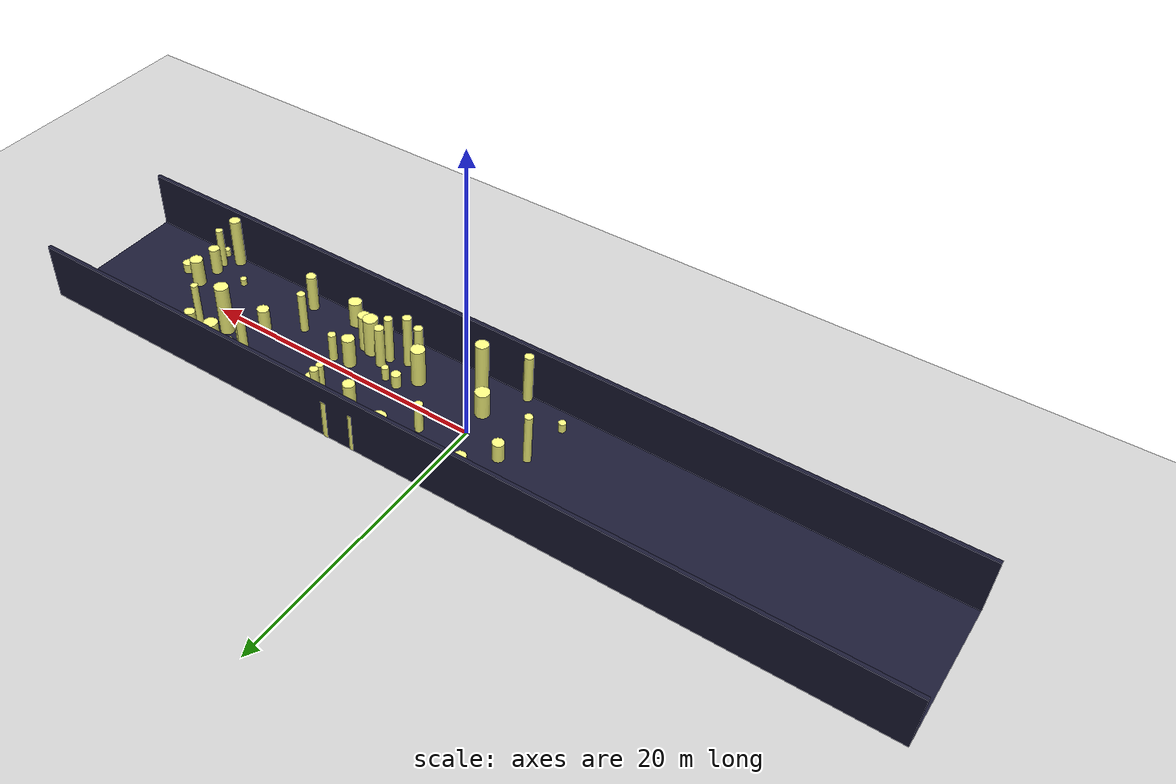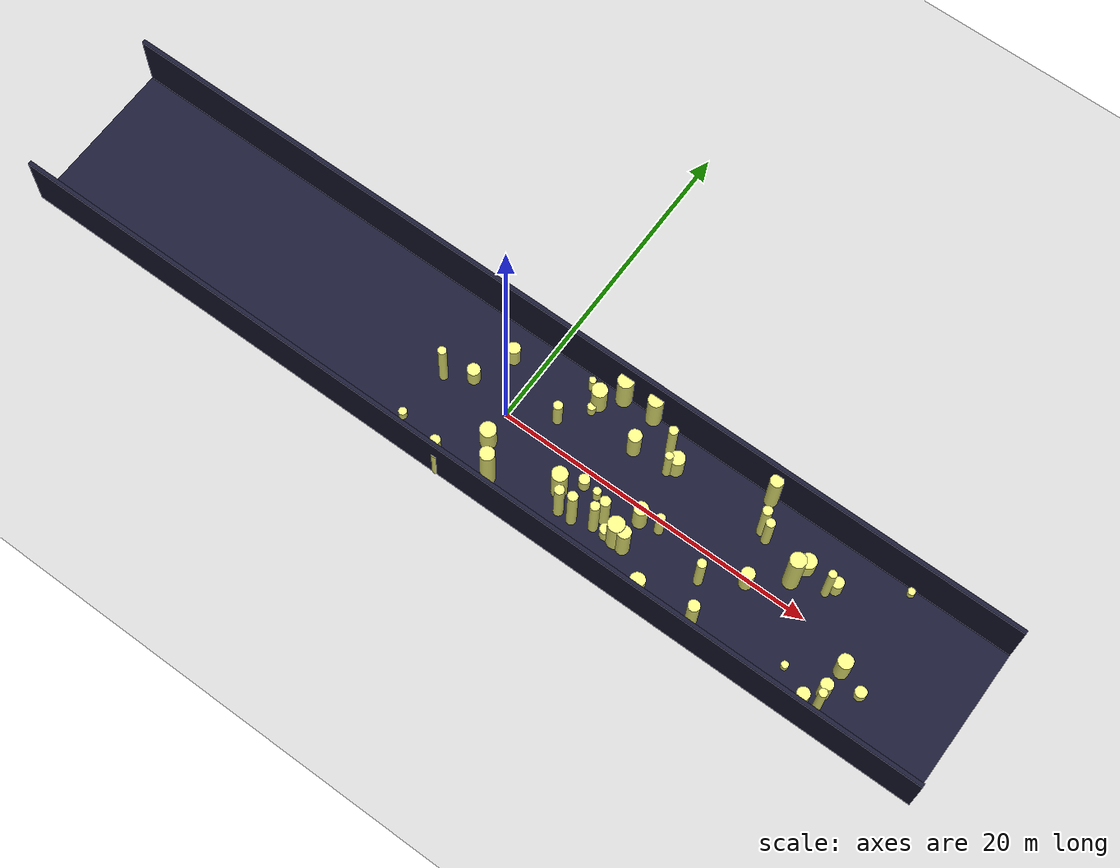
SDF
<sdf version="1.4">
 <world name="default">
  <include><uri>model://ground_plane</uri></include>
  <include><uri>model://sun</uri></include>
  <model name="forest">
   <static>true</static>
   <link name="cylinder0">
    <pose>2.5122116245704937 1.4554267723790062 1.0910465891214187 0 0 0</pose>
    <visual name="visual">
     <geometry>
      <cylinder><radius>0.27874719487534594</radius><length>2.1820931782428374</length></cylinder>
     </geometry>
     <material>
      <ambient>0.6 0.6 0.6 1</ambient>
      <diffuse>1 1 0.5 1</diffuse>
      <specular>0 0 0</specular>
      <emissive>0 0 0 1</emissive>
     </material>
    </visual>
    <collision name="collision">
     <geometry>
      <cylinder><radius>0.27874719487534594</radius><length>2.1820931782428374</length></cylinder>
     </geometry>
     <max_contacts>0</max_contacts>
    </collision>
   </link>
   <link name="cylinder1">
    <pose>5.740298809791739 -2.902266478359432 1.7204444216782937 0 0 0</pose>
    <visual name="visual">
     <geometry>
      <cylinder><radius>0.29396890148288424</radius><length>3.4408888433565874</length></cylinder>
     </geometry>
     <material>
      <ambient>0.6 0.6 0.6 1</ambient>
      <diffuse>1 1 0.5 1</diffuse>
      <specular>0 0 0</specular>
      <emissive>0 0 0 1</emissive>
     </material>
    </visual>
    <collision name="collision">
     <geometry>
      <cylinder><radius>0.29396890148288424</radius><length>3.4408888433565874</length></cylinder>
     </geometry>
     <max_contacts>0</max_contacts>
    </collision>
   </link>
   <link name="cylinder3">
    <pose>15.13735271422376 -3.709229131795847 1.3510711276143499 0 0 0</pose>
    <visual name="visual">
     <geometry>
      <cylinder><radius>0.349847727589051</radius><length>2.7021422552286998</length></cylinder>
     </geometry>
     <material>
      <ambient>0.6 0.6 0.6 1</ambient>
      <diffuse>1 1 0.5 1</diffuse>
      <specular>0 0 0</specular>
      <emissive>0 0 0 1</emissive>
     </material>
    </visual>
    <collision name="collision">
     <geometry>
      <cylinder><radius>0.349847727589051</radius><length>2.7021422552286998</length></cylinder>
     </geometry>
     <max_contacts>0</max_contacts>
    </collision>
   </link>
   <link name="cylinder4">
    <pose>-4.204448856607289 -0.20657908036231465 1.8052613234034955 0 0 0</pose>
    <visual name="visual">
     <geometry>
      <cylinder><radius>0.25317556942553027</radius><length>3.610522646806991</length></cylinder>
     </geometry>
     <material>
      <ambient>0.6 0.6 0.6 1</ambient>
      <diffuse>1 1 0.5 1</diffuse>
      <specular>0 0 0</specular>
      <emissive>0 0 0 1</emissive>
     </material>
    </visual>
    <collision name="collision">
     <geometry>
      <cylinder><radius>0.25317556942553027</radius><length>3.610522646806991</length></cylinder>
     </geometry>
     <max_contacts>0</max_contacts>
    </collision>
   </link>
   <link name="cylinder5">
    <pose>9.207790323810706 2.5153890918507305 1.2973155294064729 0 0 0</pose>
    <visual name="visual">
     <geometry>
      <cylinder><radius>0.23956785812684658</radius><length>2.5946310588129458</length></cylinder>
     </geometry>
     <material>
      <ambient>0.6 0.6 0.6 1</ambient>
      <diffuse>1 1 0.5 1</diffuse>
      <specular>0 0 0</specular>
      <emissive>0 0 0 1</emissive>
     </material>
    </visual>
    <collision name="collision">
     <geometry>
      <cylinder><radius>0.23956785812684658</radius><length>2.5946310588129458</length></cylinder>
     </geometry>
     <max_contacts>0</max_contacts>
    </collision>
   </link>
   <link name="cylinder14">
    <pose>0.18886776030713648 -1.8842476643459873 0.927220741482393 0 0 0</pose>
    <visual name="visual">
     <geometry>
      <cylinder><radius>0.48721368704605916</radius><length>1.854441482964786</length></cylinder>
     </geometry>
     <material>
      <ambient>0.6 0.6 0.6 1</ambient>
      <diffuse>1 1 0.5 1</diffuse>
      <specular>0 0 0</specular>
      <emissive>0 0 0 1</emissive>
     </material>
    </visual>
    <collision name="collision">
     <geometry>
      <cylinder><radius>0.48721368704605916</radius><length>1.854441482964786</length></cylinder>
     </geometry>
     <max_contacts>0</max_contacts>
    </collision>
   </link>
   <link name="cylinder15">
    <pose>5.080948650887056 -1.9283753831646635 1.3785712172339197 0 0 0</pose>
    <visual name="visual">
     <geometry>
      <cylinder><radius>0.47102143880978553</radius><length>2.7571424344678395</length></cylinder>
     </geometry>
     <material>
      <ambient>0.6 0.6 0.6 1</ambient>
      <diffuse>1 1 0.5 1</diffuse>
      <specular>0 0 0</specular>
      <emissive>0 0 0 1</emissive>
     </material>
    </visual>
    <collision name="collision">
     <geometry>
      <cylinder><radius>0.47102143880978553</radius><length>2.7571424344678395</length></cylinder>
     </geometry>
     <max_contacts>0</max_contacts>
    </collision>
   </link>
   <link name="cylinder16">
    <pose>6.61182804432131 -2.898672489483226 1.9259601925053633 0 0 0</pose>
    <visual name="visual">
     <geometry>
      <cylinder><radius>0.29760178141295346</radius><length>3.8519203850107266</length></cylinder>
     </geometry>
     <material>
      <ambient>0.6 0.6 0.6 1</ambient>
      <diffuse>1 1 0.5 1</diffuse>
      <specular>0 0 0</specular>
      <emissive>0 0 0 1</emissive>
     </material>
    </visual>
    <collision name="collision">
     <geometry>
      <cylinder><radius>0.29760178141295346</radius><length>3.8519203850107266</length></cylinder>
     </geometry>
     <max_contacts>0</max_contacts>
    </collision>
   </link>
   <link name="cylinder21">
    <pose>14.794978983714138 4.5721895103297125 1.5877301425671195 0 0 0</pose>
    <visual name="visual">
     <geometry>
      <cylinder><radius>0.39303448608732106</radius><length>3.175460285134239</length></cylinder>
     </geometry>
     <material>
      <ambient>0.6 0.6 0.6 1</ambient>
      <diffuse>1 1 0.5 1</diffuse>
      <specular>0 0 0</specular>
      <emissive>0 0 0 1</emissive>
     </material>
    </visual>
    <collision name="collision">
     <geometry>
      <cylinder><radius>0.39303448608732106</radius><length>3.175460285134239</length></cylinder>
     </geometry>
     <max_contacts>0</max_contacts>
    </collision>
   </link>
   <link name="cylinder22">
    <pose>1.4580143266485805 -3.6402796680702654 1.8861537415355962 0 0 0</pose>
    <visual name="visual">
     <geometry>
      <cylinder><radius>0.43752073358639076</radius><length>3.7723074830711925</length></cylinder>
     </geometry>
     <material>
      <ambient>0.6 0.6 0.6 1</ambient>
      <diffuse>1 1 0.5 1</diffuse>
      <specular>0 0 0</specular>
      <emissive>0 0 0 1</emissive>
     </material>
    </visual>
    <collision name="collision">
     <geometry>
      <cylinder><radius>0.43752073358639076</radius><length>3.7723074830711925</length></cylinder>
     </geometry>
     <max_contacts>0</max_contacts>
    </collision>
   </link>
   <link name="cylinder24">
    <pose>2.953514451823768 4.171516001826896 0.6280694018056326 0 0 0</pose>
    <visual name="visual">
     <geometry>
      <cylinder><radius>0.21291179388986262</radius><length>1.2561388036112653</length></cylinder>
     </geometry>
     <material>
      <ambient>0.6 0.6 0.6 1</ambient>
      <diffuse>1 1 0.5 1</diffuse>
      <specular>0 0 0</specular>
      <emissive>0 0 0 1</emissive>
     </material>
    </visual>
    <collision name="collision">
     <geometry>
      <cylinder><radius>0.21291179388986262</radius><length>1.2561388036112653</length></cylinder>
     </geometry>
     <max_contacts>0</max_contacts>
    </collision>
   </link>
   <link name="cylinder27">
    <pose>16.339308908062087 -0.2025547932904317 0.8571047263075176 0 0 0</pose>
    <visual name="visual">
     <geometry>
      <cylinder><radius>0.39997915163697584</radius><length>1.714209452615035</length></cylinder>
     </geometry>
     <material>
      <ambient>0.6 0.6 0.6 1</ambient>
      <diffuse>1 1 0.5 1</diffuse>
      <specular>0 0 0</specular>
      <emissive>0 0 0 1</emissive>
     </material>
    </visual>
    <collision name="collision">
     <geometry>
      <cylinder><radius>0.39997915163697584</radius><length>1.714209452615035</length></cylinder>
     </geometry>
     <max_contacts>0</max_contacts>
    </collision>
   </link>
   <link name="cylinder33">
    <pose>18.23974290360573 1.339459283368205 1.8441640490602003 0 0 0</pose>
    <visual name="visual">
     <geometry>
      <cylinder><radius>0.47264410393034395</radius><length>3.6883280981204005</length></cylinder>
     </geometry>
     <material>
      <ambient>0.6 0.6 0.6 1</ambient>
      <diffuse>1 1 0.5 1</diffuse>
      <specular>0 0 0</specular>
      <emissive>0 0 0 1</emissive>
     </material>
    </visual>
    <collision name="collision">
     <geometry>
      <cylinder><radius>0.47264410393034395</radius><length>3.6883280981204005</length></cylinder>
     </geometry>
     <max_contacts>0</max_contacts>
    </collision>
   </link>
   <link name="cylinder34">
    <pose>23.095826558992556 -2.8613568608352025 0.9951352167996178 0 0 0</pose>
    <visual name="visual">
     <geometry>
      <cylinder><radius>0.3710210629821359</radius><length>1.9902704335992356</length></cylinder>
     </geometry>
     <material>
      <ambient>0.6 0.6 0.6 1</ambient>
      <diffuse>1 1 0.5 1</diffuse>
      <specular>0 0 0</specular>
      <emissive>0 0 0 1</emissive>
     </material>
    </visual>
    <collision name="collision">
     <geometry>
      <cylinder><radius>0.3710210629821359</radius><length>1.9902704335992356</length></cylinder>
     </geometry>
     <max_contacts>0</max_contacts>
    </collision>
   </link>
   <link name="cylinder35">
    <pose>24.714990797352712 -1.765484414521131 0.38211233775964437 0 0 0</pose>
    <visual name="visual">
     <geometry>
      <cylinder><radius>0.3425147693579313</radius><length>0.7642246755192887</length></cylinder>
     </geometry>
     <material>
      <ambient>0.6 0.6 0.6 1</ambient>
      <diffuse>1 1 0.5 1</diffuse>
      <specular>0 0 0</specular>
      <emissive>0 0 0 1</emissive>
     </material>
    </visual>
    <collision name="collision">
     <geometry>
      <cylinder><radius>0.3425147693579313</radius><length>0.7642246755192887</length></cylinder>
     </geometry>
     <max_contacts>0</max_contacts>
    </collision>
   </link>
   <link name="cylinder36">
    <pose>23.224490616280995 -3.663025094059953 1.477940125006662 0 0 0</pose>
    <visual name="visual">
     <geometry>
      <cylinder><radius>0.24628033705042934</radius><length>2.955880250013324</length></cylinder>
     </geometry>
     <material>
      <ambient>0.6 0.6 0.6 1</ambient>
      <diffuse>1 1 0.5 1</diffuse>
      <specular>0 0 0</specular>
      <emissive>0 0 0 1</emissive>
     </material>
    </visual>
    <collision name="collision">
     <geometry>
      <cylinder><radius>0.24628033705042934</radius><length>2.955880250013324</length></cylinder>
     </geometry>
     <max_contacts>0</max_contacts>
    </collision>
   </link>
   <link name="cylinder37">
    <pose>8.032982198013158 -1.8444594471032048 1.5328081589239524 0 0 0</pose>
    <visual name="visual">
     <geometry>
      <cylinder><radius>0.31196018191229113</radius><length>3.065616317847905</length></cylinder>
     </geometry>
     <material>
      <ambient>0.6 0.6 0.6 1</ambient>
      <diffuse>1 1 0.5 1</diffuse>
      <specular>0 0 0</specular>
      <emissive>0 0 0 1</emissive>
     </material>
    </visual>
    <collision name="collision">
     <geometry>
      <cylinder><radius>0.31196018191229113</radius><length>3.065616317847905</length></cylinder>
     </geometry>
     <max_contacts>0</max_contacts>
    </collision>
   </link>
   <link name="cylinder42">
    <pose>4.786974622643086 4.668397056595717 1.3857671620983145 0 0 0</pose>
    <visual name="visual">
     <geometry>
      <cylinder><radius>0.47808542402327797</radius><length>2.771534324196629</length></cylinder>
     </geometry>
     <material>
      <ambient>0.6 0.6 0.6 1</ambient>
      <diffuse>1 1 0.5 1</diffuse>
      <specular>0 0 0</specular>
      <emissive>0 0 0 1</emissive>
     </material>
    </visual>
    <collision name="collision">
     <geometry>
      <cylinder><radius>0.47808542402327797</radius><length>2.771534324196629</length></cylinder>
     </geometry>
     <max_contacts>0</max_contacts>
    </collision>
   </link>
   <link name="cylinder44">
    <pose>6.970719649108322 2.507995609290621 1.1072151191163275 0 0 0</pose>
    <visual name="visual">
     <geometry>
      <cylinder><radius>0.40269769239476133</radius><length>2.214430238232655</length></cylinder>
     </geometry>
     <material>
      <ambient>0.6 0.6 0.6 1</ambient>
      <diffuse>1 1 0.5 1</diffuse>
      <specular>0 0 0</specular>
      <emissive>0 0 0 1</emissive>
     </material>
    </visual>
    <collision name="collision">
     <geometry>
      <cylinder><radius>0.40269769239476133</radius><length>2.214430238232655</length></cylinder>
     </geometry>
     <max_contacts>0</max_contacts>
    </collision>
   </link>
   <link name="cylinder45">
    <pose>15.831610690590296 2.4912157370991554 1.4367248032020083 0 0 0</pose>
    <visual name="visual">
     <geometry>
      <cylinder><radius>0.26768839269387523</radius><length>2.8734496064040167</length></cylinder>
     </geometry>
     <material>
      <ambient>0.6 0.6 0.6 1</ambient>
      <diffuse>1 1 0.5 1</diffuse>
      <specular>0 0 0</specular>
      <emissive>0 0 0 1</emissive>
     </material>
    </visual>
    <collision name="collision">
     <geometry>
      <cylinder><radius>0.26768839269387523</radius><length>2.8734496064040167</length></cylinder>
     </geometry>
     <max_contacts>0</max_contacts>
    </collision>
   </link>
   <link name="cylinder48">
    <pose>7.819350977288607 -2.5271675822177464 1.7340828750675485 0 0 0</pose>
    <visual name="visual">
     <geometry>
      <cylinder><radius>0.2831108168849127</radius><length>3.468165750135097</length></cylinder>
     </geometry>
     <material>
      <ambient>0.6 0.6 0.6 1</ambient>
      <diffuse>1 1 0.5 1</diffuse>
      <specular>0 0 0</specular>
      <emissive>0 0 0 1</emissive>
     </material>
    </visual>
    <collision name="collision">
     <geometry>
      <cylinder><radius>0.2831108168849127</radius><length>3.468165750135097</length></cylinder>
     </geometry>
     <max_contacts>0</max_contacts>
    </collision>
   </link>
   <link name="cylinder49">
    <pose>22.448143988832122 -4.504987331807815 1.8040991506452526 0 0 0</pose>
    <visual name="visual">
     <geometry>
      <cylinder><radius>0.3788110216736742</radius><length>3.6081983012905052</length></cylinder>
     </geometry>
     <material>
      <ambient>0.6 0.6 0.6 1</ambient>
      <diffuse>1 1 0.5 1</diffuse>
      <specular>0 0 0</specular>
      <emissive>0 0 0 1</emissive>
     </material>
    </visual>
    <collision name="collision">
     <geometry>
      <cylinder><radius>0.3788110216736742</radius><length>3.6081983012905052</length></cylinder>
     </geometry>
     <max_contacts>0</max_contacts>
    </collision>
   </link>
   <link name="cylinder50">
    <pose>9.221202019788997 -2.4680737388358143 1.407225930817046 0 0 0</pose>
    <visual name="visual">
     <geometry>
      <cylinder><radius>0.49617912433899053</radius><length>2.814451861634092</length></cylinder>
     </geometry>
     <material>
      <ambient>0.6 0.6 0.6 1</ambient>
      <diffuse>1 1 0.5 1</diffuse>
      <specular>0 0 0</specular>
      <emissive>0 0 0 1</emissive>
     </material>
    </visual>
    <collision name="collision">
     <geometry>
      <cylinder><radius>0.49617912433899053</radius><length>2.814451861634092</length></cylinder>
     </geometry>
     <max_contacts>0</max_contacts>
    </collision>
   </link>
   <link name="cylinder51">
    <pose>23.20490847644362 -1.2479280300506157 1.0096954887568317 0 0 0</pose>
    <visual name="visual">
     <geometry>
      <cylinder><radius>0.4433873506201335</radius><length>2.0193909775136634</length></cylinder>
     </geometry>
     <material>
      <ambient>0.6 0.6 0.6 1</ambient>
      <diffuse>1 1 0.5 1</diffuse>
      <specular>0 0 0</specular>
      <emissive>0 0 0 1</emissive>
     </material>
    </visual>
    <collision name="collision">
     <geometry>
      <cylinder><radius>0.4433873506201335</radius><length>2.0193909775136634</length></cylinder>
     </geometry>
     <max_contacts>0</max_contacts>
    </collision>
   </link>
   <link name="cylinder53">
    <pose>20.10760565190381 1.9123318650157275 1.6537855213037769 0 0 0</pose>
    <visual name="visual">
     <geometry>
      <cylinder><radius>0.2386102407152301</radius><length>3.3075710426075537</length></cylinder>
     </geometry>
     <material>
      <ambient>0.6 0.6 0.6 1</ambient>
      <diffuse>1 1 0.5 1</diffuse>
      <specular>0 0 0</specular>
      <emissive>0 0 0 1</emissive>
     </material>
    </visual>
    <collision name="collision">
     <geometry>
      <cylinder><radius>0.2386102407152301</radius><length>3.3075710426075537</length></cylinder>
     </geometry>
     <max_contacts>0</max_contacts>
    </collision>
   </link>
   <link name="cylinder57">
    <pose>9.809432336711879 -2.5612738248359515 1.3699632924031055 0 0 0</pose>
    <visual name="visual">
     <geometry>
      <cylinder><radius>0.40042244446624675</radius><length>2.739926584806211</length></cylinder>
     </geometry>
     <material>
      <ambient>0.6 0.6 0.6 1</ambient>
      <diffuse>1 1 0.5 1</diffuse>
      <specular>0 0 0</specular>
      <emissive>0 0 0 1</emissive>
     </material>
    </visual>
    <collision name="collision">
     <geometry>
      <cylinder><radius>0.40042244446624675</radius><length>2.739926584806211</length></cylinder>
     </geometry>
     <max_contacts>0</max_contacts>
    </collision>
   </link>
   <link name="cylinder62">
    <pose>-1.1202543328110366 -4.891617807019855 1.2433011680831552 0 0 0</pose>
    <visual name="visual">
     <geometry>
      <cylinder><radius>0.2914426185208163</radius><length>2.4866023361663103</length></cylinder>
     </geometry>
     <material>
      <ambient>0.6 0.6 0.6 1</ambient>
      <diffuse>1 1 0.5 1</diffuse>
      <specular>0 0 0</specular>
      <emissive>0 0 0 1</emissive>
     </material>
    </visual>
    <collision name="collision">
     <geometry>
      <cylinder><radius>0.2914426185208163</radius><length>2.4866023361663103</length></cylinder>
     </geometry>
     <max_contacts>0</max_contacts>
    </collision>
   </link>
   <link name="cylinder63">
    <pose>3.8190027920107568 3.579123430146577 1.074971093633638 0 0 0</pose>
    <visual name="visual">
     <geometry>
      <cylinder><radius>0.4647251919647949</radius><length>2.149942187267276</length></cylinder>
     </geometry>
     <material>
      <ambient>0.6 0.6 0.6 1</ambient>
      <diffuse>1 1 0.5 1</diffuse>
      <specular>0 0 0</specular>
      <emissive>0 0 0 1</emissive>
     </material>
    </visual>
    <collision name="collision">
     <geometry>
      <cylinder><radius>0.4647251919647949</radius><length>2.149942187267276</length></cylinder>
     </geometry>
     <max_contacts>0</max_contacts>
    </collision>
   </link>
   <link name="cylinder64">
    <pose>-1.3353628650063172 -4.603153292782719 1.7711445876848795 0 0 0</pose>
    <visual name="visual">
     <geometry>
      <cylinder><radius>0.30010122480529033</radius><length>3.542289175369759</length></cylinder>
     </geometry>
     <material>
      <ambient>0.6 0.6 0.6 1</ambient>
      <diffuse>1 1 0.5 1</diffuse>
      <specular>0 0 0</specular>
      <emissive>0 0 0 1</emissive>
     </material>
    </visual>
    <collision name="collision">
     <geometry>
      <cylinder><radius>0.30010122480529033</radius><length>3.542289175369759</length></cylinder>
     </geometry>
     <max_contacts>0</max_contacts>
    </collision>
   </link>
   <link name="cylinder65">
    <pose>-1.6459123704790137 2.9986343947005736 0.799410165478372 0 0 0</pose>
    <visual name="visual">
     <geometry><cylinder><radius>0.379796284494472</radius><length>1.598820330956744</length></cylinder></geometry>
     <material>
      <ambient>0.6 0.6 0.6 1</ambient>
      <diffuse>1 1 0.5 1</diffuse>
      <specular>0 0 0</specular>
      <emissive>0 0 0 1</emissive>
     </material>
    </visual>
    <collision name="collision">
     <geometry><cylinder><radius>0.379796284494472</radius><length>1.598820330956744</length></cylinder></geometry>
     <max_contacts>0</max_contacts>
    </collision>
   </link>
   <link name="cylinder67">
    <pose>10.817768553214854 -0.5259603936769741 1.039585505066491 0 0 0</pose>
    <visual name="visual">
     <geometry>
      <cylinder><radius>0.26878573653986737</radius><length>2.079171010132982</length></cylinder>
     </geometry>
     <material>
      <ambient>0.6 0.6 0.6 1</ambient>
      <diffuse>1 1 0.5 1</diffuse>
      <specular>0 0 0</specular>
      <emissive>0 0 0 1</emissive>
     </material>
    </visual>
    <collision name="collision">
     <geometry>
      <cylinder><radius>0.26878573653986737</radius><length>2.079171010132982</length></cylinder>
     </geometry>
     <max_contacts>0</max_contacts>
    </collision>
   </link>
   <link name="cylinder68">
    <pose>14.183803024570182 -1.6321367324853906 1.5153235489839836 0 0 0</pose>
    <visual name="visual">
     <geometry>
      <cylinder><radius>0.27197004012225234</radius><length>3.030647097967967</length></cylinder>
     </geometry>
     <material>
      <ambient>0.6 0.6 0.6 1</ambient>
      <diffuse>1 1 0.5 1</diffuse>
      <specular>0 0 0</specular>
      <emissive>0 0 0 1</emissive>
     </material>
    </visual>
    <collision name="collision">
     <geometry>
      <cylinder><radius>0.27197004012225234</radius><length>3.030647097967967</length></cylinder>
     </geometry>
     <max_contacts>0</max_contacts>
    </collision>
   </link>
   <link name="cylinder69">
    <pose>20.631126038959664 -2.8458166371514038 0.26310570461469074 0 0 0</pose>
    <visual name="visual">
     <geometry>
      <cylinder><radius>0.2144225091931356</radius><length>0.5262114092293815</length></cylinder>
     </geometry>
     <material>
      <ambient>0.6 0.6 0.6 1</ambient>
      <diffuse>1 1 0.5 1</diffuse>
      <specular>0 0 0</specular>
      <emissive>0 0 0 1</emissive>
     </material>
    </visual>
    <collision name="collision">
     <geometry>
      <cylinder><radius>0.2144225091931356</radius><length>0.5262114092293815</length></cylinder>
     </geometry>
     <max_contacts>0</max_contacts>
    </collision>
   </link>
   <link name="cylinder70">
    <pose>6.780568366691398 4.710194866346539 1.3861195644565667 0 0 0</pose>
    <visual name="visual">
     <geometry>
      <cylinder><radius>0.45778567497248146</radius><length>2.7722391289131334</length></cylinder>
     </geometry>
     <material>
      <ambient>0.6 0.6 0.6 1</ambient>
      <diffuse>1 1 0.5 1</diffuse>
      <specular>0 0 0</specular>
      <emissive>0 0 0 1</emissive>
     </material>
    </visual>
    <collision name="collision">
     <geometry>
      <cylinder><radius>0.45778567497248146</radius><length>2.7722391289131334</length></cylinder>
     </geometry>
     <max_contacts>0</max_contacts>
    </collision>
   </link>
   <link name="cylinder71">
    <pose>11.799850733752919 -4.071775821878348 0.9528354393685703 0 0 0</pose>
    <visual name="visual">
     <geometry>
      <cylinder><radius>0.4452692028893376</radius><length>1.9056708787371406</length></cylinder>
     </geometry>
     <material>
      <ambient>0.6 0.6 0.6 1</ambient>
      <diffuse>1 1 0.5 1</diffuse>
      <specular>0 0 0</specular>
      <emissive>0 0 0 1</emissive>
     </material>
    </visual>
    <collision name="collision">
     <geometry>
      <cylinder><radius>0.4452692028893376</radius><length>1.9056708787371406</length></cylinder>
     </geometry>
     <max_contacts>0</max_contacts>
    </collision>
   </link>
   <link name="cylinder72">
    <pose>-2.7406588717417364 0.6845171566916566 0.6865115924767811 0 0 0</pose>
    <visual name="visual">
     <geometry>
      <cylinder><radius>0.38755160050737747</radius><length>1.3730231849535621</length></cylinder>
     </geometry>
     <material>
      <ambient>0.6 0.6 0.6 1</ambient>
      <diffuse>1 1 0.5 1</diffuse>
      <specular>0 0 0</specular>
      <emissive>0 0 0 1</emissive>
     </material>
    </visual>
    <collision name="collision">
     <geometry>
      <cylinder><radius>0.38755160050737747</radius><length>1.3730231849535621</length></cylinder>
     </geometry>
     <max_contacts>0</max_contacts>
    </collision>
   </link>
   <link name="cylinder75">
    <pose>8.678431007123088 3.598476296375514 1.664048630595085 0 0 0</pose>
    <visual name="visual">
     <geometry><cylinder><radius>0.2744410944720828</radius><length>3.32809726119017</length></cylinder></geometry>
     <material>
      <ambient>0.6 0.6 0.6 1</ambient>
      <diffuse>1 1 0.5 1</diffuse>
      <specular>0 0 0</specular>
      <emissive>0 0 0 1</emissive>
     </material>
    </visual>
    <collision name="collision">
     <geometry><cylinder><radius>0.2744410944720828</radius><length>3.32809726119017</length></cylinder></geometry>
     <max_contacts>0</max_contacts>
    </collision>
   </link>
   <link name="cylinder77">
    <pose>23.705097508130258 -4.590883656350768 0.2948411948718712 0 0 0</pose>
    <visual name="visual">
     <geometry>
      <cylinder><radius>0.21371512205565985</radius><length>0.5896823897437424</length></cylinder>
     </geometry>
     <material>
      <ambient>0.6 0.6 0.6 1</ambient>
      <diffuse>1 1 0.5 1</diffuse>
      <specular>0 0 0</specular>
      <emissive>0 0 0 1</emissive>
     </material>
    </visual>
    <collision name="collision">
     <geometry>
      <cylinder><radius>0.21371512205565985</radius><length>0.5896823897437424</length></cylinder>
     </geometry>
     <max_contacts>0</max_contacts>
    </collision>
   </link>
   <link name="cylinder80">
    <pose>8.619753119686422 -2.4921701277063035 0.5403637752500053 0 0 0</pose>
    <visual name="visual">
     <geometry>
      <cylinder><radius>0.35053714325482976</radius><length>1.0807275505000107</length></cylinder>
     </geometry>
     <material>
      <ambient>0.6 0.6 0.6 1</ambient>
      <diffuse>1 1 0.5 1</diffuse>
      <specular>0 0 0</specular>
      <emissive>0 0 0 1</emissive>
     </material>
    </visual>
    <collision name="collision">
     <geometry>
      <cylinder><radius>0.35053714325482976</radius><length>1.0807275505000107</length></cylinder>
     </geometry>
     <max_contacts>0</max_contacts>
    </collision>
   </link>
   <link name="cylinder82">
    <pose>18.51917433551246 2.454424213440598 0.6763228913129868 0 0 0</pose>
    <visual name="visual">
     <geometry>
      <cylinder><radius>0.47712174016035186</radius><length>1.3526457826259737</length></cylinder>
     </geometry>
     <material>
      <ambient>0.6 0.6 0.6 1</ambient>
      <diffuse>1 1 0.5 1</diffuse>
      <specular>0 0 0</specular>
      <emissive>0 0 0 1</emissive>
     </material>
    </visual>
    <collision name="collision">
     <geometry>
      <cylinder><radius>0.47712174016035186</radius><length>1.3526457826259737</length></cylinder>
     </geometry>
     <max_contacts>0</max_contacts>
    </collision>
   </link>
   <link name="cylinder84">
    <pose>-4.5798570464672 -3.4738543194477134 0.3518024904844381 0 0 0</pose>
    <visual name="visual">
     <geometry>
      <cylinder><radius>0.24530643076879968</radius><length>0.7036049809688762</length></cylinder>
     </geometry>
     <material>
      <ambient>0.6 0.6 0.6 1</ambient>
      <diffuse>1 1 0.5 1</diffuse>
      <specular>0 0 0</specular>
      <emissive>0 0 0 1</emissive>
     </material>
    </visual>
    <collision name="collision">
     <geometry>
      <cylinder><radius>0.24530643076879968</radius><length>0.7036049809688762</length></cylinder>
     </geometry>
     <max_contacts>0</max_contacts>
    </collision>
   </link>
   <link name="cylinder85">
    <pose>15.365208833423964 2.774482397236998 1.7165733926764974 0 0 0</pose>
    <visual name="visual">
     <geometry>
      <cylinder><radius>0.28910523704547886</radius><length>3.433146785352995</length></cylinder>
     </geometry>
     <material>
      <ambient>0.6 0.6 0.6 1</ambient>
      <diffuse>1 1 0.5 1</diffuse>
      <specular>0 0 0</specular>
      <emissive>0 0 0 1</emissive>
     </material>
    </visual>
    <collision name="collision">
     <geometry>
      <cylinder><radius>0.28910523704547886</radius><length>3.433146785352995</length></cylinder>
     </geometry>
     <max_contacts>0</max_contacts>
    </collision>
   </link>
   <link name="cylinder89">
    <pose>9.513824444506419 2.966333547423476 0.8955300479680691 0 0 0</pose>
    <visual name="visual">
     <geometry>
      <cylinder><radius>0.4536550308507975</radius><length>1.7910600959361382</length></cylinder>
     </geometry>
     <material>
      <ambient>0.6 0.6 0.6 1</ambient>
      <diffuse>1 1 0.5 1</diffuse>
      <specular>0 0 0</specular>
      <emissive>0 0 0 1</emissive>
     </material>
    </visual>
    <collision name="collision">
     <geometry>
      <cylinder><radius>0.4536550308507975</radius><length>1.7910600959361382</length></cylinder>
     </geometry>
     <max_contacts>0</max_contacts>
    </collision>
   </link>
   <link name="cylinder91">
    <pose>6.000028143043135 -0.8306237302830057 0.5208610442469925 0 0 0</pose>
    <visual name="visual">
     <geometry>
      <cylinder><radius>0.32279307336334606</radius><length>1.041722088493985</length></cylinder>
     </geometry>
     <material>
      <ambient>0.6 0.6 0.6 1</ambient>
      <diffuse>1 1 0.5 1</diffuse>
      <specular>0 0 0</specular>
      <emissive>0 0 0 1</emissive>
     </material>
    </visual>
    <collision name="collision">
     <geometry>
      <cylinder><radius>0.32279307336334606</radius><length>1.041722088493985</length></cylinder>
     </geometry>
     <max_contacts>0</max_contacts>
    </collision>
   </link>
   <link name="cylinder92">
    <pose>3.741504003365474 3.0014652557896397 0.4022537740776915 0 0 0</pose>
    <visual name="visual">
     <geometry>
      <cylinder><radius>0.2468969550510117</radius><length>0.804507548155383</length></cylinder>
     </geometry>
     <material>
      <ambient>0.6 0.6 0.6 1</ambient>
      <diffuse>1 1 0.5 1</diffuse>
      <specular>0 0 0</specular>
      <emissive>0 0 0 1</emissive>
     </material>
    </visual>
    <collision name="collision">
     <geometry>
      <cylinder><radius>0.2468969550510117</radius><length>0.804507548155383</length></cylinder>
     </geometry>
     <max_contacts>0</max_contacts>
    </collision>
   </link>
   <link name="cylinder93">
    <pose>6.95439517668553 -0.9579493131803227 0.49628118702461593 0 0 0</pose>
    <visual name="visual">
     <geometry>
      <cylinder><radius>0.2365712605994581</radius><length>0.9925623740492319</length></cylinder>
     </geometry>
     <material>
      <ambient>0.6 0.6 0.6 1</ambient>
      <diffuse>1 1 0.5 1</diffuse>
      <specular>0 0 0</specular>
      <emissive>0 0 0 1</emissive>
     </material>
    </visual>
    <collision name="collision">
     <geometry>
      <cylinder><radius>0.2365712605994581</radius><length>0.9925623740492319</length></cylinder>
     </geometry>
     <max_contacts>0</max_contacts>
    </collision>
   </link>
   <link name="cylinder95">
    <pose>9.667373041734841 -0.7408263650060949 1.090707623524531 0 0 0</pose>
    <visual name="visual">
     <geometry>
      <cylinder><radius>0.4231139685232306</radius><length>2.181415247049062</length></cylinder>
     </geometry>
     <material>
      <ambient>0.6 0.6 0.6 1</ambient>
      <diffuse>1 1 0.5 1</diffuse>
      <specular>0 0 0</specular>
      <emissive>0 0 0 1</emissive>
     </material>
    </visual>
    <collision name="collision">
     <geometry>
      <cylinder><radius>0.4231139685232306</radius><length>2.181415247049062</length></cylinder>
     </geometry>
     <max_contacts>0</max_contacts>
    </collision>
   </link>
   <link name="cylinder97">
    <pose>23.87205239858684 4.612065436752944 0.2780723999521286 0 0 0</pose>
    <visual name="visual">
     <geometry>
      <cylinder><radius>0.22250478984074754</radius><length>0.5561447999042572</length></cylinder>
     </geometry>
     <material>
      <ambient>0.6 0.6 0.6 1</ambient>
      <diffuse>1 1 0.5 1</diffuse>
      <specular>0 0 0</specular>
      <emissive>0 0 0 1</emissive>
     </material>
    </visual>
    <collision name="collision">
     <geometry>
      <cylinder><radius>0.22250478984074754</radius><length>0.5561447999042572</length></cylinder>
     </geometry>
     <max_contacts>0</max_contacts>
    </collision>
   </link>
   <link name="cylinder99">
    <pose>20.44686071065776 2.394710545574638 0.6592849924643258 0 0 0</pose>
    <visual name="visual">
     <geometry>
      <cylinder><radius>0.36110287336971647</radius><length>1.3185699849286516</length></cylinder>
     </geometry>
     <material>
      <ambient>0.6 0.6 0.6 1</ambient>
      <diffuse>1 1 0.5 1</diffuse>
      <specular>0 0 0</specular>
      <emissive>0 0 0 1</emissive>
     </material>
    </visual>
    <collision name="collision">
     <geometry>
      <cylinder><radius>0.36110287336971647</radius><length>1.3185699849286516</length></cylinder>
     </geometry>
     <max_contacts>0</max_contacts>
    </collision>
   </link>
   <link name="cube0">
    <pose>0 5.0 2.0 0 0 0</pose>
    <visual name="visual">
     <geometry><box><size>60.0 0.25 4.0</size></box></geometry>
     <material>
      <ambient>0.1 0.1 0.1 1</ambient>
      <diffuse>0.1 0.1 0.2 1</diffuse>
      <specular>0 0 0</specular>
      <emissive>0 0 0 1</emissive>
     </material>
    </visual>
    <collision name="collision">
     <geometry><box><size>60.0 0.25 4.0</size></box></geometry>
     <max_contacts>0</max_contacts>
    </collision>
   </link>
   <link name="cube1">
    <pose>0 -5.0 2.0 0 0 0</pose>
    <visual name="visual">
     <geometry><box><size>60.0 0.25 4.0</size></box></geometry>
     <material>
      <ambient>0.1 0.1 0.1 1</ambient>
      <diffuse>0.1 0.1 0.2 1</diffuse>
      <specular>0 0 0</specular>
      <emissive>0 0 0 1</emissive>
     </material>
    </visual>
    <collision name="collision">
     <geometry><box><size>60.0 0.25 4.0</size></box></geometry>
     <max_contacts>0</max_contacts>
    </collision>
   </link>
   <link name="cube2">
    <pose>0 0 0.03125 0 0 0</pose>
    <visual name="visual">
     <geometry><box><size>60.0 10 0.0625</size></box></geometry>
     <material>
      <ambient>0.1 0.1 0.1 1</ambient>
      <diffuse>0.1 0.1 0.2 1</diffuse>
      <specular>0 0 0</specular>
      <emissive>0 0 0 1</emissive>
     </material>
    </visual>
    <collision name="collision">
     <geometry><box><size>60.0 10 0.0625</size></box></geometry>
     <max_contacts>0</max_contacts>
    </collision>
   </link>
  </model>
 </world>
</sdf>
